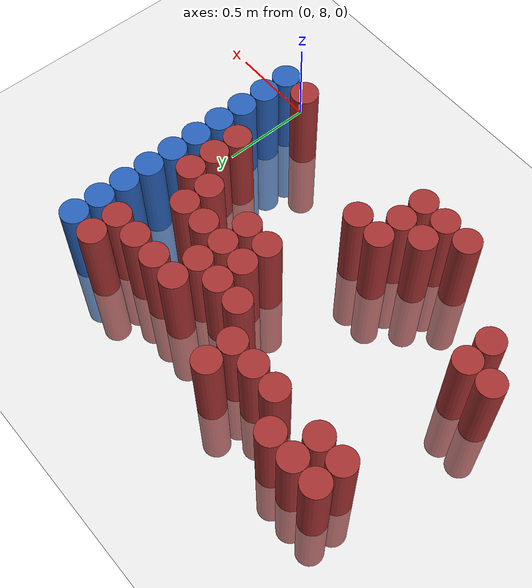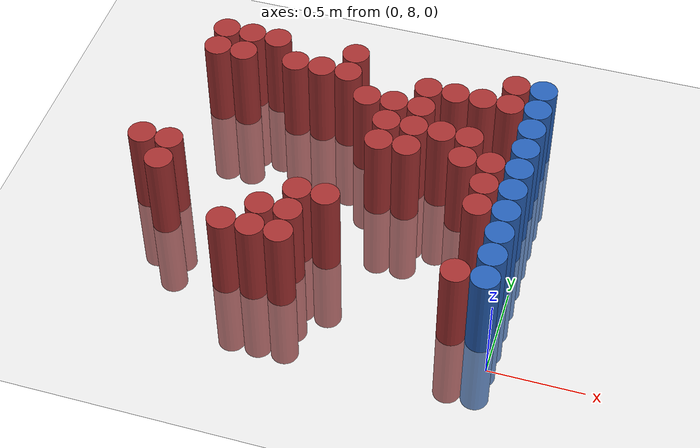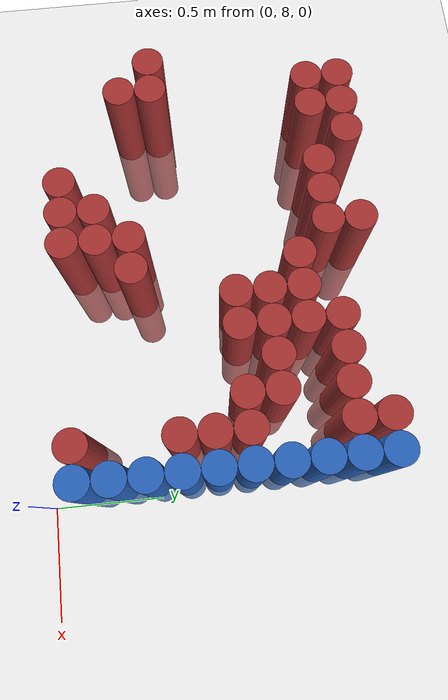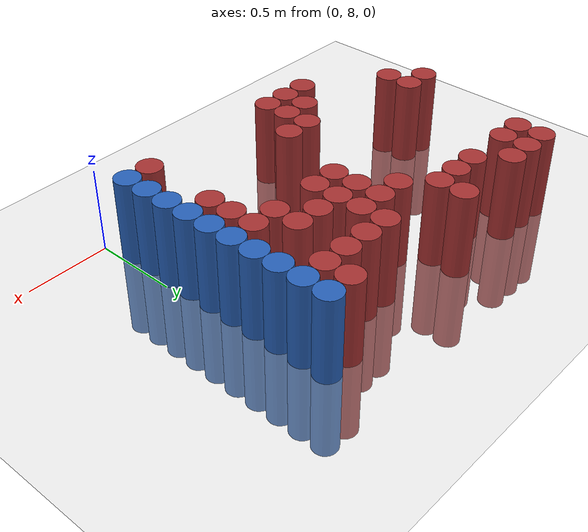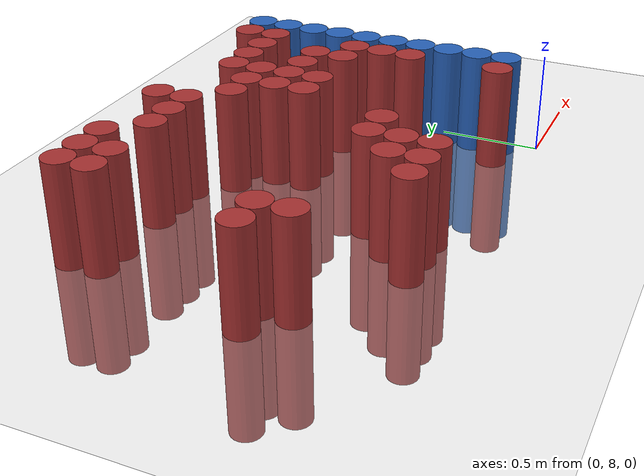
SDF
<sdf version="1.6">
 <world name="default">
  <model name="ground_plane">
   <static>1</static>
   <link name="link">
    <collision name="collision">
     <geometry><plane><normal>0 0 1</normal><size>100 100</size></plane></geometry>
     <surface><friction><ode><mu>100</mu><mu2>50</mu2></ode></friction></surface>
    </collision>
    <visual name="visual">
     <cast_shadows>0</cast_shadows>
     <geometry><plane><normal>0 0 1</normal><size>100 100</size></plane></geometry>
     <material>
      <script><uri>file://media/materials/scripts/gazebo.material</uri><name>Gazebo/Grey</name></script>
     </material>
    </visual>
   </link>
  </model>
  <model name="unit_cylinder_223">
   <static>1</static>
   <pose>-2.025000 8.625000 0.000000 0.000000 0.000000 0.000000</pose>
   <link name="link">
    <inertial>
     <mass>1</mass>
     <inertia><ixx>0.145833</ixx><ixy>0</ixy><ixz>0</ixz><iyy>0.145833</iyy><iyz>0</iyz><izz>0.125</izz></inertia>
    </inertial>
    <collision name="collision">
     <geometry><cylinder><radius>0.075000</radius><length>1</length></cylinder></geometry>
    </collision>
    <visual name="visual">
     <geometry><cylinder><radius>0.075000</radius><length>1</length></cylinder></geometry>
     <material>
      <ambient>0.648000 0.192000 0.192000 1</ambient>
      <diffuse>0.648000 0.192000 0.192000 1</diffuse>
     </material>
     <material>
      <script><name>Gazebo/Grey</name><uri>file://media/materials/scripts/gazebo.material</uri></script>
     </material>
    </visual>
   </link>
  </model>
  <model name="unit_cylinder_224">
   <static>1</static>
   <pose>-1.875000 8.475000 0.000000 0.000000 0.000000 0.000000</pose>
   <link name="link">
    <inertial>
     <mass>1</mass>
     <inertia><ixx>0.145833</ixx><ixy>0</ixy><ixz>0</ixz><iyy>0.145833</iyy><iyz>0</iyz><izz>0.125</izz></inertia>
    </inertial>
    <collision name="collision">
     <geometry><cylinder><radius>0.075000</radius><length>1</length></cylinder></geometry>
    </collision>
    <visual name="visual">
     <geometry><cylinder><radius>0.075000</radius><length>1</length></cylinder></geometry>
     <material>
      <ambient>0.648000 0.192000 0.192000 1</ambient>
      <diffuse>0.648000 0.192000 0.192000 1</diffuse>
     </material>
     <material>
      <script><name>Gazebo/Grey</name><uri>file://media/materials/scripts/gazebo.material</uri></script>
     </material>
    </visual>
   </link>
  </model>
  <model name="unit_cylinder_225">
   <static>1</static>
   <pose>-1.875000 8.625000 0.000000 0.000000 0.000000 0.000000</pose>
   <link name="link">
    <inertial>
     <mass>1</mass>
     <inertia><ixx>0.145833</ixx><ixy>0</ixy><ixz>0</ixz><iyy>0.145833</iyy><iyz>0</iyz><izz>0.125</izz></inertia>
    </inertial>
    <collision name="collision">
     <geometry><cylinder><radius>0.075000</radius><length>1</length></cylinder></geometry>
    </collision>
    <visual name="visual">
     <geometry><cylinder><radius>0.075000</radius><length>1</length></cylinder></geometry>
     <material>
      <ambient>0.648000 0.192000 0.192000 1</ambient>
      <diffuse>0.648000 0.192000 0.192000 1</diffuse>
     </material>
     <material>
      <script><name>Gazebo/Grey</name><uri>file://media/materials/scripts/gazebo.material</uri></script>
     </material>
    </visual>
   </link>
  </model>
  <model name="unit_cylinder_226">
   <static>1</static>
   <pose>-1.875000 9.375000 0.000000 0.000000 0.000000 0.000000</pose>
   <link name="link">
    <inertial>
     <mass>1</mass>
     <inertia><ixx>0.145833</ixx><ixy>0</ixy><ixz>0</ixz><iyy>0.145833</iyy><iyz>0</iyz><izz>0.125</izz></inertia>
    </inertial>
    <collision name="collision">
     <geometry><cylinder><radius>0.075000</radius><length>1</length></cylinder></geometry>
    </collision>
    <visual name="visual">
     <geometry><cylinder><radius>0.075000</radius><length>1</length></cylinder></geometry>
     <material>
      <ambient>0.648000 0.192000 0.192000 1</ambient>
      <diffuse>0.648000 0.192000 0.192000 1</diffuse>
     </material>
     <material>
      <script><name>Gazebo/Grey</name><uri>file://media/materials/scripts/gazebo.material</uri></script>
     </material>
    </visual>
   </link>
  </model>
  <model name="unit_cylinder_227">
   <static>1</static>
   <pose>-1.875000 9.525000 0.000000 0.000000 0.000000 0.000000</pose>
   <link name="link">
    <inertial>
     <mass>1</mass>
     <inertia><ixx>0.145833</ixx><ixy>0</ixy><ixz>0</ixz><iyy>0.145833</iyy><iyz>0</iyz><izz>0.125</izz></inertia>
    </inertial>
    <collision name="collision">
     <geometry><cylinder><radius>0.075000</radius><length>1</length></cylinder></geometry>
    </collision>
    <visual name="visual">
     <geometry><cylinder><radius>0.075000</radius><length>1</length></cylinder></geometry>
     <material>
      <ambient>0.648000 0.192000 0.192000 1</ambient>
      <diffuse>0.648000 0.192000 0.192000 1</diffuse>
     </material>
     <material>
      <script><name>Gazebo/Grey</name><uri>file://media/materials/scripts/gazebo.material</uri></script>
     </material>
    </visual>
   </link>
  </model>
  <model name="unit_cylinder_228">
   <static>1</static>
   <pose>-1.725000 9.375000 0.000000 0.000000 0.000000 0.000000</pose>
   <link name="link">
    <inertial>
     <mass>1</mass>
     <inertia><ixx>0.145833</ixx><ixy>0</ixy><ixz>0</ixz><iyy>0.145833</iyy><iyz>0</iyz><izz>0.125</izz></inertia>
    </inertial>
    <collision name="collision">
     <geometry><cylinder><radius>0.075000</radius><length>1</length></cylinder></geometry>
    </collision>
    <visual name="visual">
     <geometry><cylinder><radius>0.075000</radius><length>1</length></cylinder></geometry>
     <material>
      <ambient>0.648000 0.192000 0.192000 1</ambient>
      <diffuse>0.648000 0.192000 0.192000 1</diffuse>
     </material>
     <material>
      <script><name>Gazebo/Grey</name><uri>file://media/materials/scripts/gazebo.material</uri></script>
     </material>
    </visual>
   </link>
  </model>
  <model name="unit_cylinder_229">
   <static>1</static>
   <pose>-1.725000 9.525000 0.000000 0.000000 0.000000 0.000000</pose>
   <link name="link">
    <inertial>
     <mass>1</mass>
     <inertia><ixx>0.145833</ixx><ixy>0</ixy><ixz>0</ixz><iyy>0.145833</iyy><iyz>0</iyz><izz>0.125</izz></inertia>
    </inertial>
    <collision name="collision">
     <geometry><cylinder><radius>0.075000</radius><length>1</length></cylinder></geometry>
    </collision>
    <visual name="visual">
     <geometry><cylinder><radius>0.075000</radius><length>1</length></cylinder></geometry>
     <material>
      <ambient>0.648000 0.192000 0.192000 1</ambient>
      <diffuse>0.648000 0.192000 0.192000 1</diffuse>
     </material>
     <material>
      <script><name>Gazebo/Grey</name><uri>file://media/materials/scripts/gazebo.material</uri></script>
     </material>
    </visual>
   </link>
  </model>
  <model name="unit_cylinder_230">
   <static>1</static>
   <pose>-1.575000 9.525000 0.000000 0.000000 0.000000 0.000000</pose>
   <link name="link">
    <inertial>
     <mass>1</mass>
     <inertia><ixx>0.145833</ixx><ixy>0</ixy><ixz>0</ixz><iyy>0.145833</iyy><iyz>0</iyz><izz>0.125</izz></inertia>
    </inertial>
    <collision name="collision">
     <geometry><cylinder><radius>0.075000</radius><length>1</length></cylinder></geometry>
    </collision>
    <visual name="visual">
     <geometry><cylinder><radius>0.075000</radius><length>1</length></cylinder></geometry>
     <material>
      <ambient>0.648000 0.192000 0.192000 1</ambient>
      <diffuse>0.648000 0.192000 0.192000 1</diffuse>
     </material>
     <material>
      <script><name>Gazebo/Grey</name><uri>file://media/materials/scripts/gazebo.material</uri></script>
     </material>
    </visual>
   </link>
  </model>
  <model name="unit_cylinder_233">
   <static>1</static>
   <pose>-1.425000 8.175000 0.000000 0.000000 0.000000 0.000000</pose>
   <link name="link">
    <inertial>
     <mass>1</mass>
     <inertia><ixx>0.145833</ixx><ixy>0</ixy><ixz>0</ixz><iyy>0.145833</iyy><iyz>0</iyz><izz>0.125</izz></inertia>
    </inertial>
    <collision name="collision">
     <geometry><cylinder><radius>0.075000</radius><length>1</length></cylinder></geometry>
    </collision>
    <visual name="visual">
     <geometry><cylinder><radius>0.075000</radius><length>1</length></cylinder></geometry>
     <material>
      <ambient>0.648000 0.192000 0.192000 1</ambient>
      <diffuse>0.648000 0.192000 0.192000 1</diffuse>
     </material>
     <material>
      <script><name>Gazebo/Grey</name><uri>file://media/materials/scripts/gazebo.material</uri></script>
     </material>
    </visual>
   </link>
  </model>
  <model name="unit_cylinder_234">
   <static>1</static>
   <pose>-1.425000 9.375000 0.000000 0.000000 0.000000 0.000000</pose>
   <link name="link">
    <inertial>
     <mass>1</mass>
     <inertia><ixx>0.145833</ixx><ixy>0</ixy><ixz>0</ixz><iyy>0.145833</iyy><iyz>0</iyz><izz>0.125</izz></inertia>
    </inertial>
    <collision name="collision">
     <geometry><cylinder><radius>0.075000</radius><length>1</length></cylinder></geometry>
    </collision>
    <visual name="visual">
     <geometry><cylinder><radius>0.075000</radius><length>1</length></cylinder></geometry>
     <material>
      <ambient>0.648000 0.192000 0.192000 1</ambient>
      <diffuse>0.648000 0.192000 0.192000 1</diffuse>
     </material>
     <material>
      <script><name>Gazebo/Grey</name><uri>file://media/materials/scripts/gazebo.material</uri></script>
     </material>
    </visual>
   </link>
  </model>
  <model name="unit_cylinder_238">
   <static>1</static>
   <pose>-1.275000 8.175000 0.000000 0.000000 0.000000 0.000000</pose>
   <link name="link">
    <inertial>
     <mass>1</mass>
     <inertia><ixx>0.145833</ixx><ixy>0</ixy><ixz>0</ixz><iyy>0.145833</iyy><iyz>0</iyz><izz>0.125</izz></inertia>
    </inertial>
    <collision name="collision">
     <geometry><cylinder><radius>0.075000</radius><length>1</length></cylinder></geometry>
    </collision>
    <visual name="visual">
     <geometry><cylinder><radius>0.075000</radius><length>1</length></cylinder></geometry>
     <material>
      <ambient>0.648000 0.192000 0.192000 1</ambient>
      <diffuse>0.648000 0.192000 0.192000 1</diffuse>
     </material>
     <material>
      <script><name>Gazebo/Grey</name><uri>file://media/materials/scripts/gazebo.material</uri></script>
     </material>
    </visual>
   </link>
  </model>
  <model name="unit_cylinder_239">
   <static>1</static>
   <pose>-1.275000 8.325000 0.000000 0.000000 0.000000 0.000000</pose>
   <link name="link">
    <inertial>
     <mass>1</mass>
     <inertia><ixx>0.145833</ixx><ixy>0</ixy><ixz>0</ixz><iyy>0.145833</iyy><iyz>0</iyz><izz>0.125</izz></inertia>
    </inertial>
    <collision name="collision">
     <geometry><cylinder><radius>0.075000</radius><length>1</length></cylinder></geometry>
    </collision>
    <visual name="visual">
     <geometry><cylinder><radius>0.075000</radius><length>1</length></cylinder></geometry>
     <material>
      <ambient>0.648000 0.192000 0.192000 1</ambient>
      <diffuse>0.648000 0.192000 0.192000 1</diffuse>
     </material>
     <material>
      <script><name>Gazebo/Grey</name><uri>file://media/materials/scripts/gazebo.material</uri></script>
     </material>
    </visual>
   </link>
  </model>
  <model name="unit_cylinder_240">
   <static>1</static>
   <pose>-1.275000 9.375000 0.000000 0.000000 0.000000 0.000000</pose>
   <link name="link">
    <inertial>
     <mass>1</mass>
     <inertia><ixx>0.145833</ixx><ixy>0</ixy><ixz>0</ixz><iyy>0.145833</iyy><iyz>0</iyz><izz>0.125</izz></inertia>
    </inertial>
    <collision name="collision">
     <geometry><cylinder><radius>0.075000</radius><length>1</length></cylinder></geometry>
    </collision>
    <visual name="visual">
     <geometry><cylinder><radius>0.075000</radius><length>1</length></cylinder></geometry>
     <material>
      <ambient>0.648000 0.192000 0.192000 1</ambient>
      <diffuse>0.648000 0.192000 0.192000 1</diffuse>
     </material>
     <material>
      <script><name>Gazebo/Grey</name><uri>file://media/materials/scripts/gazebo.material</uri></script>
     </material>
    </visual>
   </link>
  </model>
  <model name="unit_cylinder_244">
   <static>1</static>
   <pose>-1.125000 8.175000 0.000000 0.000000 0.000000 0.000000</pose>
   <link name="link">
    <inertial>
     <mass>1</mass>
     <inertia><ixx>0.145833</ixx><ixy>0</ixy><ixz>0</ixz><iyy>0.145833</iyy><iyz>0</iyz><izz>0.125</izz></inertia>
    </inertial>
    <collision name="collision">
     <geometry><cylinder><radius>0.075000</radius><length>1</length></cylinder></geometry>
    </collision>
    <visual name="visual">
     <geometry><cylinder><radius>0.075000</radius><length>1</length></cylinder></geometry>
     <material>
      <ambient>0.648000 0.192000 0.192000 1</ambient>
      <diffuse>0.648000 0.192000 0.192000 1</diffuse>
     </material>
     <material>
      <script><name>Gazebo/Grey</name><uri>file://media/materials/scripts/gazebo.material</uri></script>
     </material>
    </visual>
   </link>
  </model>
  <model name="unit_cylinder_245">
   <static>1</static>
   <pose>-1.125000 8.325000 0.000000 0.000000 0.000000 0.000000</pose>
   <link name="link">
    <inertial>
     <mass>1</mass>
     <inertia><ixx>0.145833</ixx><ixy>0</ixy><ixz>0</ixz><iyy>0.145833</iyy><iyz>0</iyz><izz>0.125</izz></inertia>
    </inertial>
    <collision name="collision">
     <geometry><cylinder><radius>0.075000</radius><length>1</length></cylinder></geometry>
    </collision>
    <visual name="visual">
     <geometry><cylinder><radius>0.075000</radius><length>1</length></cylinder></geometry>
     <material>
      <ambient>0.648000 0.192000 0.192000 1</ambient>
      <diffuse>0.648000 0.192000 0.192000 1</diffuse>
     </material>
     <material>
      <script><name>Gazebo/Grey</name><uri>file://media/materials/scripts/gazebo.material</uri></script>
     </material>
    </visual>
   </link>
  </model>
  <model name="unit_cylinder_246">
   <static>1</static>
   <pose>-1.125000 8.475000 0.000000 0.000000 0.000000 0.000000</pose>
   <link name="link">
    <inertial>
     <mass>1</mass>
     <inertia><ixx>0.145833</ixx><ixy>0</ixy><ixz>0</ixz><iyy>0.145833</iyy><iyz>0</iyz><izz>0.125</izz></inertia>
    </inertial>
    <collision name="collision">
     <geometry><cylinder><radius>0.075000</radius><length>1</length></cylinder></geometry>
    </collision>
    <visual name="visual">
     <geometry><cylinder><radius>0.075000</radius><length>1</length></cylinder></geometry>
     <material>
      <ambient>0.648000 0.192000 0.192000 1</ambient>
      <diffuse>0.648000 0.192000 0.192000 1</diffuse>
     </material>
     <material>
      <script><name>Gazebo/Grey</name><uri>file://media/materials/scripts/gazebo.material</uri></script>
     </material>
    </visual>
   </link>
  </model>
  <model name="unit_cylinder_247">
   <static>1</static>
   <pose>-1.125000 9.375000 0.000000 0.000000 0.000000 0.000000</pose>
   <link name="link">
    <inertial>
     <mass>1</mass>
     <inertia><ixx>0.145833</ixx><ixy>0</ixy><ixz>0</ixz><iyy>0.145833</iyy><iyz>0</iyz><izz>0.125</izz></inertia>
    </inertial>
    <collision name="collision">
     <geometry><cylinder><radius>0.075000</radius><length>1</length></cylinder></geometry>
    </collision>
    <visual name="visual">
     <geometry><cylinder><radius>0.075000</radius><length>1</length></cylinder></geometry>
     <material>
      <ambient>0.648000 0.192000 0.192000 1</ambient>
      <diffuse>0.648000 0.192000 0.192000 1</diffuse>
     </material>
     <material>
      <script><name>Gazebo/Grey</name><uri>file://media/materials/scripts/gazebo.material</uri></script>
     </material>
    </visual>
   </link>
  </model>
  <model name="unit_cylinder_248">
   <static>1</static>
   <pose>-1.125000 9.525000 0.000000 0.000000 0.000000 0.000000</pose>
   <link name="link">
    <inertial>
     <mass>1</mass>
     <inertia><ixx>0.145833</ixx><ixy>0</ixy><ixz>0</ixz><iyy>0.145833</iyy><iyz>0</iyz><izz>0.125</izz></inertia>
    </inertial>
    <collision name="collision">
     <geometry><cylinder><radius>0.075000</radius><length>1</length></cylinder></geometry>
    </collision>
    <visual name="visual">
     <geometry><cylinder><radius>0.075000</radius><length>1</length></cylinder></geometry>
     <material>
      <ambient>0.648000 0.192000 0.192000 1</ambient>
      <diffuse>0.648000 0.192000 0.192000 1</diffuse>
     </material>
     <material>
      <script><name>Gazebo/Grey</name><uri>file://media/materials/scripts/gazebo.material</uri></script>
     </material>
    </visual>
   </link>
  </model>
  <model name="unit_cylinder_254">
   <static>1</static>
   <pose>-0.975000 8.475000 0.000000 0.000000 0.000000 0.000000</pose>
   <link name="link">
    <inertial>
     <mass>1</mass>
     <inertia><ixx>0.145833</ixx><ixy>0</ixy><ixz>0</ixz><iyy>0.145833</iyy><iyz>0</iyz><izz>0.125</izz></inertia>
    </inertial>
    <collision name="collision">
     <geometry><cylinder><radius>0.075000</radius><length>1</length></cylinder></geometry>
    </collision>
    <visual name="visual">
     <geometry><cylinder><radius>0.075000</radius><length>1</length></cylinder></geometry>
     <material>
      <ambient>0.648000 0.192000 0.192000 1</ambient>
      <diffuse>0.648000 0.192000 0.192000 1</diffuse>
     </material>
     <material>
      <script><name>Gazebo/Grey</name><uri>file://media/materials/scripts/gazebo.material</uri></script>
     </material>
    </visual>
   </link>
  </model>
  <model name="unit_cylinder_255">
   <static>1</static>
   <pose>-0.975000 9.225000 0.000000 0.000000 0.000000 0.000000</pose>
   <link name="link">
    <inertial>
     <mass>1</mass>
     <inertia><ixx>0.145833</ixx><ixy>0</ixy><ixz>0</ixz><iyy>0.145833</iyy><iyz>0</iyz><izz>0.125</izz></inertia>
    </inertial>
    <collision name="collision">
     <geometry><cylinder><radius>0.075000</radius><length>1</length></cylinder></geometry>
    </collision>
    <visual name="visual">
     <geometry><cylinder><radius>0.075000</radius><length>1</length></cylinder></geometry>
     <material>
      <ambient>0.648000 0.192000 0.192000 1</ambient>
      <diffuse>0.648000 0.192000 0.192000 1</diffuse>
     </material>
     <material>
      <script><name>Gazebo/Grey</name><uri>file://media/materials/scripts/gazebo.material</uri></script>
     </material>
    </visual>
   </link>
  </model>
  <model name="unit_cylinder_264">
   <static>1</static>
   <pose>-0.825000 8.925000 0.000000 0.000000 0.000000 0.000000</pose>
   <link name="link">
    <inertial>
     <mass>1</mass>
     <inertia><ixx>0.145833</ixx><ixy>0</ixy><ixz>0</ixz><iyy>0.145833</iyy><iyz>0</iyz><izz>0.125</izz></inertia>
    </inertial>
    <collision name="collision">
     <geometry><cylinder><radius>0.075000</radius><length>1</length></cylinder></geometry>
    </collision>
    <visual name="visual">
     <geometry><cylinder><radius>0.075000</radius><length>1</length></cylinder></geometry>
     <material>
      <ambient>0.648000 0.192000 0.192000 1</ambient>
      <diffuse>0.648000 0.192000 0.192000 1</diffuse>
     </material>
     <material>
      <script><name>Gazebo/Grey</name><uri>file://media/materials/scripts/gazebo.material</uri></script>
     </material>
    </visual>
   </link>
  </model>
  <model name="unit_cylinder_265">
   <static>1</static>
   <pose>-0.825000 9.075000 0.000000 0.000000 0.000000 0.000000</pose>
   <link name="link">
    <inertial>
     <mass>1</mass>
     <inertia><ixx>0.145833</ixx><ixy>0</ixy><ixz>0</ixz><iyy>0.145833</iyy><iyz>0</iyz><izz>0.125</izz></inertia>
    </inertial>
    <collision name="collision">
     <geometry><cylinder><radius>0.075000</radius><length>1</length></cylinder></geometry>
    </collision>
    <visual name="visual">
     <geometry><cylinder><radius>0.075000</radius><length>1</length></cylinder></geometry>
     <material>
      <ambient>0.648000 0.192000 0.192000 1</ambient>
      <diffuse>0.648000 0.192000 0.192000 1</diffuse>
     </material>
     <material>
      <script><name>Gazebo/Grey</name><uri>file://media/materials/scripts/gazebo.material</uri></script>
     </material>
    </visual>
   </link>
  </model>
  <model name="unit_cylinder_266">
   <static>1</static>
   <pose>-0.825000 9.225000 0.000000 0.000000 0.000000 0.000000</pose>
   <link name="link">
    <inertial>
     <mass>1</mass>
     <inertia><ixx>0.145833</ixx><ixy>0</ixy><ixz>0</ixz><iyy>0.145833</iyy><iyz>0</iyz><izz>0.125</izz></inertia>
    </inertial>
    <collision name="collision">
     <geometry><cylinder><radius>0.075000</radius><length>1</length></cylinder></geometry>
    </collision>
    <visual name="visual">
     <geometry><cylinder><radius>0.075000</radius><length>1</length></cylinder></geometry>
     <material>
      <ambient>0.648000 0.192000 0.192000 1</ambient>
      <diffuse>0.648000 0.192000 0.192000 1</diffuse>
     </material>
     <material>
      <script><name>Gazebo/Grey</name><uri>file://media/materials/scripts/gazebo.material</uri></script>
     </material>
    </visual>
   </link>
  </model>
  <model name="unit_cylinder_269">
   <static>1</static>
   <pose>-0.675000 8.925000 0.000000 0.000000 0.000000 0.000000</pose>
   <link name="link">
    <inertial>
     <mass>1</mass>
     <inertia><ixx>0.145833</ixx><ixy>0</ixy><ixz>0</ixz><iyy>0.145833</iyy><iyz>0</iyz><izz>0.125</izz></inertia>
    </inertial>
    <collision name="collision">
     <geometry><cylinder><radius>0.075000</radius><length>1</length></cylinder></geometry>
    </collision>
    <visual name="visual">
     <geometry><cylinder><radius>0.075000</radius><length>1</length></cylinder></geometry>
     <material>
      <ambient>0.648000 0.192000 0.192000 1</ambient>
      <diffuse>0.648000 0.192000 0.192000 1</diffuse>
     </material>
     <material>
      <script><name>Gazebo/Grey</name><uri>file://media/materials/scripts/gazebo.material</uri></script>
     </material>
    </visual>
   </link>
  </model>
  <model name="unit_cylinder_270">
   <static>1</static>
   <pose>-0.675000 9.075000 0.000000 0.000000 0.000000 0.000000</pose>
   <link name="link">
    <inertial>
     <mass>1</mass>
     <inertia><ixx>0.145833</ixx><ixy>0</ixy><ixz>0</ixz><iyy>0.145833</iyy><iyz>0</iyz><izz>0.125</izz></inertia>
    </inertial>
    <collision name="collision">
     <geometry><cylinder><radius>0.075000</radius><length>1</length></cylinder></geometry>
    </collision>
    <visual name="visual">
     <geometry><cylinder><radius>0.075000</radius><length>1</length></cylinder></geometry>
     <material>
      <ambient>0.648000 0.192000 0.192000 1</ambient>
      <diffuse>0.648000 0.192000 0.192000 1</diffuse>
     </material>
     <material>
      <script><name>Gazebo/Grey</name><uri>file://media/materials/scripts/gazebo.material</uri></script>
     </material>
    </visual>
   </link>
  </model>
  <model name="unit_cylinder_271">
   <static>1</static>
   <pose>-0.675000 9.225000 0.000000 0.000000 0.000000 0.000000</pose>
   <link name="link">
    <inertial>
     <mass>1</mass>
     <inertia><ixx>0.145833</ixx><ixy>0</ixy><ixz>0</ixz><iyy>0.145833</iyy><iyz>0</iyz><izz>0.125</izz></inertia>
    </inertial>
    <collision name="collision">
     <geometry><cylinder><radius>0.075000</radius><length>1</length></cylinder></geometry>
    </collision>
    <visual name="visual">
     <geometry><cylinder><radius>0.075000</radius><length>1</length></cylinder></geometry>
     <material>
      <ambient>0.648000 0.192000 0.192000 1</ambient>
      <diffuse>0.648000 0.192000 0.192000 1</diffuse>
     </material>
     <material>
      <script><name>Gazebo/Grey</name><uri>file://media/materials/scripts/gazebo.material</uri></script>
     </material>
    </visual>
   </link>
  </model>
  <model name="unit_cylinder_272">
   <static>1</static>
   <pose>-0.675000 9.375000 0.000000 0.000000 0.000000 0.000000</pose>
   <link name="link">
    <inertial>
     <mass>1</mass>
     <inertia><ixx>0.145833</ixx><ixy>0</ixy><ixz>0</ixz><iyy>0.145833</iyy><iyz>0</iyz><izz>0.125</izz></inertia>
    </inertial>
    <collision name="collision">
     <geometry><cylinder><radius>0.075000</radius><length>1</length></cylinder></geometry>
    </collision>
    <visual name="visual">
     <geometry><cylinder><radius>0.075000</radius><length>1</length></cylinder></geometry>
     <material>
      <ambient>0.648000 0.192000 0.192000 1</ambient>
      <diffuse>0.648000 0.192000 0.192000 1</diffuse>
     </material>
     <material>
      <script><name>Gazebo/Grey</name><uri>file://media/materials/scripts/gazebo.material</uri></script>
     </material>
    </visual>
   </link>
  </model>
  <model name="unit_cylinder_274">
   <static>1</static>
   <pose>-0.525000 9.075000 0.000000 0.000000 0.000000 0.000000</pose>
   <link name="link">
    <inertial>
     <mass>1</mass>
     <inertia><ixx>0.145833</ixx><ixy>0</ixy><ixz>0</ixz><iyy>0.145833</iyy><iyz>0</iyz><izz>0.125</izz></inertia>
    </inertial>
    <collision name="collision">
     <geometry><cylinder><radius>0.075000</radius><length>1</length></cylinder></geometry>
    </collision>
    <visual name="visual">
     <geometry><cylinder><radius>0.075000</radius><length>1</length></cylinder></geometry>
     <material>
      <ambient>0.648000 0.192000 0.192000 1</ambient>
      <diffuse>0.648000 0.192000 0.192000 1</diffuse>
     </material>
     <material>
      <script><name>Gazebo/Grey</name><uri>file://media/materials/scripts/gazebo.material</uri></script>
     </material>
    </visual>
   </link>
  </model>
  <model name="unit_cylinder_275">
   <static>1</static>
   <pose>-0.525000 9.375000 0.000000 0.000000 0.000000 0.000000</pose>
   <link name="link">
    <inertial>
     <mass>1</mass>
     <inertia><ixx>0.145833</ixx><ixy>0</ixy><ixz>0</ixz><iyy>0.145833</iyy><iyz>0</iyz><izz>0.125</izz></inertia>
    </inertial>
    <collision name="collision">
     <geometry><cylinder><radius>0.075000</radius><length>1</length></cylinder></geometry>
    </collision>
    <visual name="visual">
     <geometry><cylinder><radius>0.075000</radius><length>1</length></cylinder></geometry>
     <material>
      <ambient>0.648000 0.192000 0.192000 1</ambient>
      <diffuse>0.648000 0.192000 0.192000 1</diffuse>
     </material>
     <material>
      <script><name>Gazebo/Grey</name><uri>file://media/materials/scripts/gazebo.material</uri></script>
     </material>
    </visual>
   </link>
  </model>
  <model name="unit_cylinder_281">
   <static>1</static>
   <pose>-0.375000 8.925000 0.000000 0.000000 0.000000 0.000000</pose>
   <link name="link">
    <inertial>
     <mass>1</mass>
     <inertia><ixx>0.145833</ixx><ixy>0</ixy><ixz>0</ixz><iyy>0.145833</iyy><iyz>0</iyz><izz>0.125</izz></inertia>
    </inertial>
    <collision name="collision">
     <geometry><cylinder><radius>0.075000</radius><length>1</length></cylinder></geometry>
    </collision>
    <visual name="visual">
     <geometry><cylinder><radius>0.075000</radius><length>1</length></cylinder></geometry>
     <material>
      <ambient>0.648000 0.192000 0.192000 1</ambient>
      <diffuse>0.648000 0.192000 0.192000 1</diffuse>
     </material>
     <material>
      <script><name>Gazebo/Grey</name><uri>file://media/materials/scripts/gazebo.material</uri></script>
     </material>
    </visual>
   </link>
  </model>
  <model name="unit_cylinder_282">
   <static>1</static>
   <pose>-0.375000 9.075000 0.000000 0.000000 0.000000 0.000000</pose>
   <link name="link">
    <inertial>
     <mass>1</mass>
     <inertia><ixx>0.145833</ixx><ixy>0</ixy><ixz>0</ixz><iyy>0.145833</iyy><iyz>0</iyz><izz>0.125</izz></inertia>
    </inertial>
    <collision name="collision">
     <geometry><cylinder><radius>0.075000</radius><length>1</length></cylinder></geometry>
    </collision>
    <visual name="visual">
     <geometry><cylinder><radius>0.075000</radius><length>1</length></cylinder></geometry>
     <material>
      <ambient>0.648000 0.192000 0.192000 1</ambient>
      <diffuse>0.648000 0.192000 0.192000 1</diffuse>
     </material>
     <material>
      <script><name>Gazebo/Grey</name><uri>file://media/materials/scripts/gazebo.material</uri></script>
     </material>
    </visual>
   </link>
  </model>
  <model name="unit_cylinder_283">
   <static>1</static>
   <pose>-0.375000 9.375000 0.000000 0.000000 0.000000 0.000000</pose>
   <link name="link">
    <inertial>
     <mass>1</mass>
     <inertia><ixx>0.145833</ixx><ixy>0</ixy><ixz>0</ixz><iyy>0.145833</iyy><iyz>0</iyz><izz>0.125</izz></inertia>
    </inertial>
    <collision name="collision">
     <geometry><cylinder><radius>0.075000</radius><length>1</length></cylinder></geometry>
    </collision>
    <visual name="visual">
     <geometry><cylinder><radius>0.075000</radius><length>1</length></cylinder></geometry>
     <material>
      <ambient>0.648000 0.192000 0.192000 1</ambient>
      <diffuse>0.648000 0.192000 0.192000 1</diffuse>
     </material>
     <material>
      <script><name>Gazebo/Grey</name><uri>file://media/materials/scripts/gazebo.material</uri></script>
     </material>
    </visual>
   </link>
  </model>
  <model name="unit_cylinder_294">
   <static>1</static>
   <pose>-0.225000 8.175000 0.000000 0.000000 0.000000 0.000000</pose>
   <link name="link">
    <inertial>
     <mass>1</mass>
     <inertia><ixx>0.145833</ixx><ixy>0</ixy><ixz>0</ixz><iyy>0.145833</iyy><iyz>0</iyz><izz>0.125</izz></inertia>
    </inertial>
    <collision name="collision">
     <geometry><cylinder><radius>0.075000</radius><length>1</length></cylinder></geometry>
    </collision>
    <visual name="visual">
     <geometry><cylinder><radius>0.075000</radius><length>1</length></cylinder></geometry>
     <material>
      <ambient>0.648000 0.192000 0.192000 1</ambient>
      <diffuse>0.648000 0.192000 0.192000 1</diffuse>
     </material>
     <material>
      <script><name>Gazebo/Grey</name><uri>file://media/materials/scripts/gazebo.material</uri></script>
     </material>
    </visual>
   </link>
  </model>
  <model name="unit_cylinder_295">
   <static>1</static>
   <pose>-0.225000 8.625000 0.000000 0.000000 0.000000 0.000000</pose>
   <link name="link">
    <inertial>
     <mass>1</mass>
     <inertia><ixx>0.145833</ixx><ixy>0</ixy><ixz>0</ixz><iyy>0.145833</iyy><iyz>0</iyz><izz>0.125</izz></inertia>
    </inertial>
    <collision name="collision">
     <geometry><cylinder><radius>0.075000</radius><length>1</length></cylinder></geometry>
    </collision>
    <visual name="visual">
     <geometry><cylinder><radius>0.075000</radius><length>1</length></cylinder></geometry>
     <material>
      <ambient>0.648000 0.192000 0.192000 1</ambient>
      <diffuse>0.648000 0.192000 0.192000 1</diffuse>
     </material>
     <material>
      <script><name>Gazebo/Grey</name><uri>file://media/materials/scripts/gazebo.material</uri></script>
     </material>
    </visual>
   </link>
  </model>
  <model name="unit_cylinder_296">
   <static>1</static>
   <pose>-0.225000 8.775000 0.000000 0.000000 0.000000 0.000000</pose>
   <link name="link">
    <inertial>
     <mass>1</mass>
     <inertia><ixx>0.145833</ixx><ixy>0</ixy><ixz>0</ixz><iyy>0.145833</iyy><iyz>0</iyz><izz>0.125</izz></inertia>
    </inertial>
    <collision name="collision">
     <geometry><cylinder><radius>0.075000</radius><length>1</length></cylinder></geometry>
    </collision>
    <visual name="visual">
     <geometry><cylinder><radius>0.075000</radius><length>1</length></cylinder></geometry>
     <material>
      <ambient>0.648000 0.192000 0.192000 1</ambient>
      <diffuse>0.648000 0.192000 0.192000 1</diffuse>
     </material>
     <material>
      <script><name>Gazebo/Grey</name><uri>file://media/materials/scripts/gazebo.material</uri></script>
     </material>
    </visual>
   </link>
  </model>
  <model name="unit_cylinder_297">
   <static>1</static>
   <pose>-0.225000 8.925000 0.000000 0.000000 0.000000 0.000000</pose>
   <link name="link">
    <inertial>
     <mass>1</mass>
     <inertia><ixx>0.145833</ixx><ixy>0</ixy><ixz>0</ixz><iyy>0.145833</iyy><iyz>0</iyz><izz>0.125</izz></inertia>
    </inertial>
    <collision name="collision">
     <geometry><cylinder><radius>0.075000</radius><length>1</length></cylinder></geometry>
    </collision>
    <visual name="visual">
     <geometry><cylinder><radius>0.075000</radius><length>1</length></cylinder></geometry>
     <material>
      <ambient>0.648000 0.192000 0.192000 1</ambient>
      <diffuse>0.648000 0.192000 0.192000 1</diffuse>
     </material>
     <material>
      <script><name>Gazebo/Grey</name><uri>file://media/materials/scripts/gazebo.material</uri></script>
     </material>
    </visual>
   </link>
  </model>
  <model name="unit_cylinder_298">
   <static>1</static>
   <pose>-0.225000 9.375000 0.000000 0.000000 0.000000 0.000000</pose>
   <link name="link">
    <inertial>
     <mass>1</mass>
     <inertia><ixx>0.145833</ixx><ixy>0</ixy><ixz>0</ixz><iyy>0.145833</iyy><iyz>0</iyz><izz>0.125</izz></inertia>
    </inertial>
    <collision name="collision">
     <geometry><cylinder><radius>0.075000</radius><length>1</length></cylinder></geometry>
    </collision>
    <visual name="visual">
     <geometry><cylinder><radius>0.075000</radius><length>1</length></cylinder></geometry>
     <material>
      <ambient>0.648000 0.192000 0.192000 1</ambient>
      <diffuse>0.648000 0.192000 0.192000 1</diffuse>
     </material>
     <material>
      <script><name>Gazebo/Grey</name><uri>file://media/materials/scripts/gazebo.material</uri></script>
     </material>
    </visual>
   </link>
  </model>
  <model name="unit_cylinder_299">
   <static>1</static>
   <pose>-0.225000 9.525000 0.000000 0.000000 0.000000 0.000000</pose>
   <link name="link">
    <inertial>
     <mass>1</mass>
     <inertia><ixx>0.145833</ixx><ixy>0</ixy><ixz>0</ixz><iyy>0.145833</iyy><iyz>0</iyz><izz>0.125</izz></inertia>
    </inertial>
    <collision name="collision">
     <geometry><cylinder><radius>0.075000</radius><length>1</length></cylinder></geometry>
    </collision>
    <visual name="visual">
     <geometry><cylinder><radius>0.075000</radius><length>1</length></cylinder></geometry>
     <material>
      <ambient>0.648000 0.192000 0.192000 1</ambient>
      <diffuse>0.648000 0.192000 0.192000 1</diffuse>
     </material>
     <material>
      <script><name>Gazebo/Grey</name><uri>file://media/materials/scripts/gazebo.material</uri></script>
     </material>
    </visual>
   </link>
  </model>
  <model name="unit_cylinder_320">
   <static>1</static>
   <pose>-0.075000 8.175000 0.000000 0.000000 0.000000 0.000000</pose>
   <link name="link">
    <inertial>
     <mass>1</mass>
     <inertia><ixx>0.145833</ixx><ixy>0</ixy><ixz>0</ixz><iyy>0.145833</iyy><iyz>0</iyz><izz>0.125</izz></inertia>
    </inertial>
    <collision name="collision">
     <geometry><cylinder><radius>0.075000</radius><length>1</length></cylinder></geometry>
    </collision>
    <visual name="visual">
     <geometry><cylinder><radius>0.075000</radius><length>1</length></cylinder></geometry>
     <material>
      <ambient>0.152000 0.379000 0.720000 1</ambient>
      <diffuse>0.152000 0.379000 0.720000 1</diffuse>
     </material>
     <material>
      <script><name>Gazebo/Grey</name><uri>file://media/materials/scripts/gazebo.material</uri></script>
     </material>
    </visual>
   </link>
  </model>
  <model name="unit_cylinder_321">
   <static>1</static>
   <pose>-0.075000 8.325000 0.000000 0.000000 0.000000 0.000000</pose>
   <link name="link">
    <inertial>
     <mass>1</mass>
     <inertia><ixx>0.145833</ixx><ixy>0</ixy><ixz>0</ixz><iyy>0.145833</iyy><iyz>0</iyz><izz>0.125</izz></inertia>
    </inertial>
    <collision name="collision">
     <geometry><cylinder><radius>0.075000</radius><length>1</length></cylinder></geometry>
    </collision>
    <visual name="visual">
     <geometry><cylinder><radius>0.075000</radius><length>1</length></cylinder></geometry>
     <material>
      <ambient>0.152000 0.379000 0.720000 1</ambient>
      <diffuse>0.152000 0.379000 0.720000 1</diffuse>
     </material>
     <material>
      <script><name>Gazebo/Grey</name><uri>file://media/materials/scripts/gazebo.material</uri></script>
     </material>
    </visual>
   </link>
  </model>
  <model name="unit_cylinder_322">
   <static>1</static>
   <pose>-0.075000 8.475000 0.000000 0.000000 0.000000 0.000000</pose>
   <link name="link">
    <inertial>
     <mass>1</mass>
     <inertia><ixx>0.145833</ixx><ixy>0</ixy><ixz>0</ixz><iyy>0.145833</iyy><iyz>0</iyz><izz>0.125</izz></inertia>
    </inertial>
    <collision name="collision">
     <geometry><cylinder><radius>0.075000</radius><length>1</length></cylinder></geometry>
    </collision>
    <visual name="visual">
     <geometry><cylinder><radius>0.075000</radius><length>1</length></cylinder></geometry>
     <material>
      <ambient>0.152000 0.379000 0.720000 1</ambient>
      <diffuse>0.152000 0.379000 0.720000 1</diffuse>
     </material>
     <material>
      <script><name>Gazebo/Grey</name><uri>file://media/materials/scripts/gazebo.material</uri></script>
     </material>
    </visual>
   </link>
  </model>
  <model name="unit_cylinder_323">
   <static>1</static>
   <pose>-0.075000 8.625000 0.000000 0.000000 0.000000 0.000000</pose>
   <link name="link">
    <inertial>
     <mass>1</mass>
     <inertia><ixx>0.145833</ixx><ixy>0</ixy><ixz>0</ixz><iyy>0.145833</iyy><iyz>0</iyz><izz>0.125</izz></inertia>
    </inertial>
    <collision name="collision">
     <geometry><cylinder><radius>0.075000</radius><length>1</length></cylinder></geometry>
    </collision>
    <visual name="visual">
     <geometry><cylinder><radius>0.075000</radius><length>1</length></cylinder></geometry>
     <material>
      <ambient>0.152000 0.379000 0.720000 1</ambient>
      <diffuse>0.152000 0.379000 0.720000 1</diffuse>
     </material>
     <material>
      <script><name>Gazebo/Grey</name><uri>file://media/materials/scripts/gazebo.material</uri></script>
     </material>
    </visual>
   </link>
  </model>
  <model name="unit_cylinder_324">
   <static>1</static>
   <pose>-0.075000 8.775000 0.000000 0.000000 0.000000 0.000000</pose>
   <link name="link">
    <inertial>
     <mass>1</mass>
     <inertia><ixx>0.145833</ixx><ixy>0</ixy><ixz>0</ixz><iyy>0.145833</iyy><iyz>0</iyz><izz>0.125</izz></inertia>
    </inertial>
    <collision name="collision">
     <geometry><cylinder><radius>0.075000</radius><length>1</length></cylinder></geometry>
    </collision>
    <visual name="visual">
     <geometry><cylinder><radius>0.075000</radius><length>1</length></cylinder></geometry>
     <material>
      <ambient>0.152000 0.379000 0.720000 1</ambient>
      <diffuse>0.152000 0.379000 0.720000 1</diffuse>
     </material>
     <material>
      <script><name>Gazebo/Grey</name><uri>file://media/materials/scripts/gazebo.material</uri></script>
     </material>
    </visual>
   </link>
  </model>
  <model name="unit_cylinder_325">
   <static>1</static>
   <pose>-0.075000 8.925000 0.000000 0.000000 0.000000 0.000000</pose>
   <link name="link">
    <inertial>
     <mass>1</mass>
     <inertia><ixx>0.145833</ixx><ixy>0</ixy><ixz>0</ixz><iyy>0.145833</iyy><iyz>0</iyz><izz>0.125</izz></inertia>
    </inertial>
    <collision name="collision">
     <geometry><cylinder><radius>0.075000</radius><length>1</length></cylinder></geometry>
    </collision>
    <visual name="visual">
     <geometry><cylinder><radius>0.075000</radius><length>1</length></cylinder></geometry>
     <material>
      <ambient>0.152000 0.379000 0.720000 1</ambient>
      <diffuse>0.152000 0.379000 0.720000 1</diffuse>
     </material>
     <material>
      <script><name>Gazebo/Grey</name><uri>file://media/materials/scripts/gazebo.material</uri></script>
     </material>
    </visual>
   </link>
  </model>
  <model name="unit_cylinder_326">
   <static>1</static>
   <pose>-0.075000 9.075000 0.000000 0.000000 0.000000 0.000000</pose>
   <link name="link">
    <inertial>
     <mass>1</mass>
     <inertia><ixx>0.145833</ixx><ixy>0</ixy><ixz>0</ixz><iyy>0.145833</iyy><iyz>0</iyz><izz>0.125</izz></inertia>
    </inertial>
    <collision name="collision">
     <geometry><cylinder><radius>0.075000</radius><length>1</length></cylinder></geometry>
    </collision>
    <visual name="visual">
     <geometry><cylinder><radius>0.075000</radius><length>1</length></cylinder></geometry>
     <material>
      <ambient>0.152000 0.379000 0.720000 1</ambient>
      <diffuse>0.152000 0.379000 0.720000 1</diffuse>
     </material>
     <material>
      <script><name>Gazebo/Grey</name><uri>file://media/materials/scripts/gazebo.material</uri></script>
     </material>
    </visual>
   </link>
  </model>
  <model name="unit_cylinder_327">
   <static>1</static>
   <pose>-0.075000 9.225000 0.000000 0.000000 0.000000 0.000000</pose>
   <link name="link">
    <inertial>
     <mass>1</mass>
     <inertia><ixx>0.145833</ixx><ixy>0</ixy><ixz>0</ixz><iyy>0.145833</iyy><iyz>0</iyz><izz>0.125</izz></inertia>
    </inertial>
    <collision name="collision">
     <geometry><cylinder><radius>0.075000</radius><length>1</length></cylinder></geometry>
    </collision>
    <visual name="visual">
     <geometry><cylinder><radius>0.075000</radius><length>1</length></cylinder></geometry>
     <material>
      <ambient>0.152000 0.379000 0.720000 1</ambient>
      <diffuse>0.152000 0.379000 0.720000 1</diffuse>
     </material>
     <material>
      <script><name>Gazebo/Grey</name><uri>file://media/materials/scripts/gazebo.material</uri></script>
     </material>
    </visual>
   </link>
  </model>
  <model name="unit_cylinder_328">
   <static>1</static>
   <pose>-0.075000 9.375000 0.000000 0.000000 0.000000 0.000000</pose>
   <link name="link">
    <inertial>
     <mass>1</mass>
     <inertia><ixx>0.145833</ixx><ixy>0</ixy><ixz>0</ixz><iyy>0.145833</iyy><iyz>0</iyz><izz>0.125</izz></inertia>
    </inertial>
    <collision name="collision">
     <geometry><cylinder><radius>0.075000</radius><length>1</length></cylinder></geometry>
    </collision>
    <visual name="visual">
     <geometry><cylinder><radius>0.075000</radius><length>1</length></cylinder></geometry>
     <material>
      <ambient>0.152000 0.379000 0.720000 1</ambient>
      <diffuse>0.152000 0.379000 0.720000 1</diffuse>
     </material>
     <material>
      <script><name>Gazebo/Grey</name><uri>file://media/materials/scripts/gazebo.material</uri></script>
     </material>
    </visual>
   </link>
  </model>
  <model name="unit_cylinder_329">
   <static>1</static>
   <pose>-0.075000 9.525000 0.000000 0.000000 0.000000 0.000000</pose>
   <link name="link">
    <inertial>
     <mass>1</mass>
     <inertia><ixx>0.145833</ixx><ixy>0</ixy><ixz>0</ixz><iyy>0.145833</iyy><iyz>0</iyz><izz>0.125</izz></inertia>
    </inertial>
    <collision name="collision">
     <geometry><cylinder><radius>0.075000</radius><length>1</length></cylinder></geometry>
    </collision>
    <visual name="visual">
     <geometry><cylinder><radius>0.075000</radius><length>1</length></cylinder></geometry>
     <material>
      <ambient>0.152000 0.379000 0.720000 1</ambient>
      <diffuse>0.152000 0.379000 0.720000 1</diffuse>
     </material>
     <material>
      <script><name>Gazebo/Grey</name><uri>file://media/materials/scripts/gazebo.material</uri></script>
     </material>
    </visual>
   </link>
  </model>
 </world>
</sdf>
